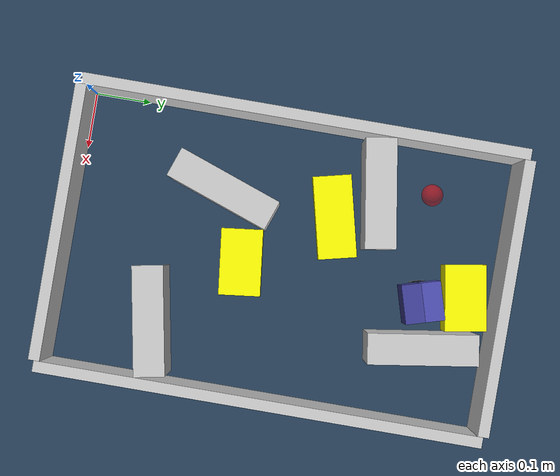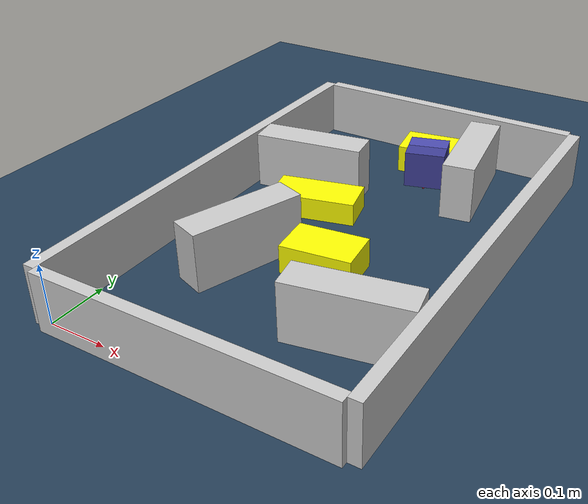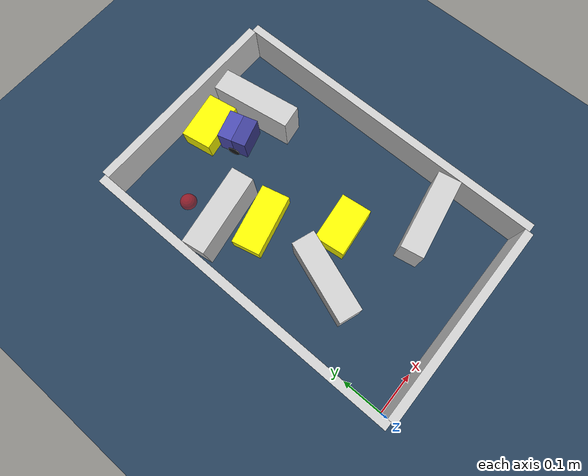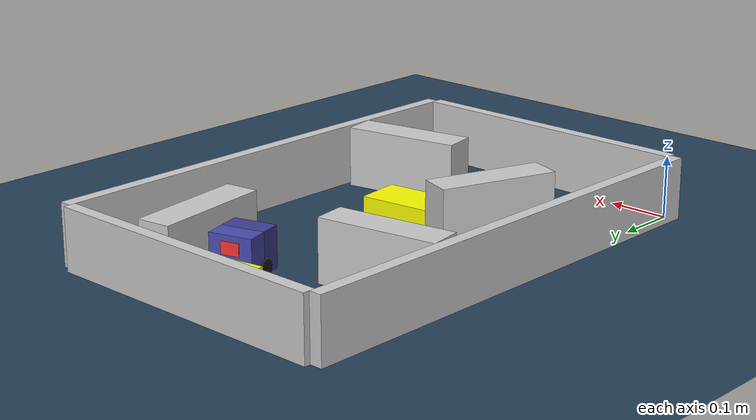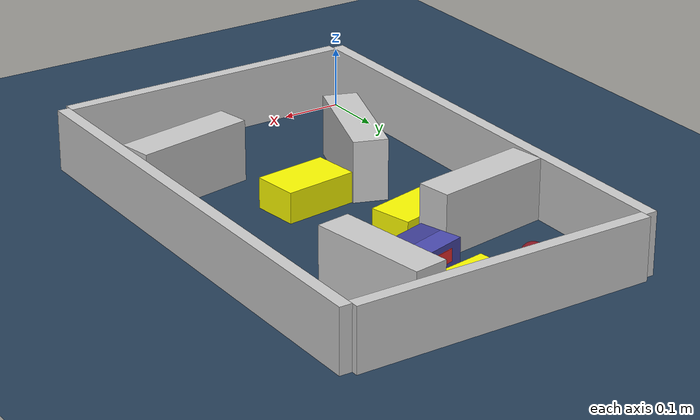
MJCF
<?xml version='1.0' encoding='utf-8'?>
<mujoco model="real_buildable">
  <compiler angle="degree" />
  <option timestep="0.002" integrator="implicitfast" iterations="100" cone="elliptic" />
  <default>
    <geom density="1" />
  </default>
  <asset>
    <texture builtin="gradient" height="3072" rgb1="0.3 0.5 0.7" rgb2="0 0 0" type="skybox" width="512" />
    <texture builtin="checker" height="300" mark="edge" markrgb="0.8 0.8 0.8" name="groundplane" rgb1="0.2 0.3 0.4" rgb2="0.1 0.2 0.3" type="2d" width="300" />
    <material name="groundplane" reflectance="0.2" texrepeat="5 5" texture="groundplane" texuniform="true" />
  </asset>
  <worldbody>
    <light dir="0 0 -1" directional="true" pos="0 0 1.5" />
    <geom name="floor" type="plane" condim="4" friction="0.5 0.005 0.001" material="groundplane" size="0 0 0.05" />
    <body name="walls">
      <geom name="wall_boundary_left" type="box" condim="4" friction="1.0 0.005 0.0001" rgba="0.8 0.8 0.8 1" pos="-0.010000 0.387500 0.050000" euler="0 0 0.000000" size="0.010000 0.397500 0.050000" />
      <geom name="wall_boundary_right" type="box" condim="4" friction="1.0 0.005 0.0001" rgba="0.8 0.8 0.8 1" pos="0.500000 0.387500 0.050000" euler="0 0 0.000000" size="0.010000 0.397500 0.050000" />
      <geom name="wall_boundary_bottom" type="box" condim="4" friction="1.0 0.005 0.0001" rgba="0.8 0.8 0.8 1" pos="0.245000 -0.010000 0.050000" euler="0 0 0.000000" size="0.245000 0.010000 0.050000" />
      <geom name="wall_boundary_top" type="box" condim="4" friction="1.0 0.005 0.0001" rgba="0.8 0.8 0.8 1" pos="0.245000 0.785000 0.050000" euler="0 0 0.000000" size="0.245000 0.010000 0.050000" />
      <geom name="wall_inner_1" type="box" condim="4" friction="1.0 0.005 0.0001" rgba="0.8 0.8 0.8 1" pos="0.389000 0.175000 0.050000" euler="0 0 10.600000" size="0.097500 0.027500 0.050000" />
      <geom name="wall_inner_2" type="box" condim="4" friction="1.0 0.005 0.0001" rgba="0.8 0.8 0.8 1" pos="0.139000 0.265000 0.050000" euler="0 0 70.500000" size="0.097500 0.027500 0.050000" />
      <geom name="wall_inner_3" type="box" condim="4" friction="1.0 0.005 0.0001" rgba="0.8 0.8 0.8 1" pos="0.100610 0.537798 0.050000" euler="0 0 189.038645" size="0.097500 0.027500 0.050000" />
      <geom name="wall_inner_4" type="box" condim="4" friction="1.0 0.005 0.0001" rgba="0.8 0.8 0.8 1" pos="0.357346 0.656147 0.050000" euler="0 0 98.621754" size="0.097500 0.027500 0.050000" />
    </body>
    <body name="car" pos="0.27673976425297159 0.64534155111346536 0.01" quat="0.59968130529645114 0 0 0.80023892187142753">
      <freejoint name="car_freejoint" />
      <inertial pos="0 0 0.0375" mass="0.35" diaginertia="0.000266 0.000266 0.000286" />
      <geom name="front_chassis_collision" type="box" pos="0.0175 0 0.0375" size="0.0175 0.035 0.0325" rgba="0.3 0.3 0.7 1" />
      <geom name="rear_chassis_collision" type="box" pos="-0.0175 0 0.0375" size="0.0175 0.035 0.0325" rgba="0.25 0.25 0.6 1" />
      <geom name="front_marker" type="box" pos="0.034 0 0.0505" size="0.002 0.015 0.01" rgba="1 0.2 0.2 1" contype="0" conaffinity="0" />
      <body name="rear_support_body" pos="-0.03 0 0.0025">
        <joint name="rear_caster_joint" type="ball" damping="0.0001" />
        <inertial pos="0 0 0" mass="0.025" diaginertia="0.000001 0.000001 0.000001" />
        <geom name="rear_support" type="sphere" pos="0 0 0" size="0.0025" friction="0 0 0" rgba="0.7 0.1 0.1 1" />
      </body>
      <body name="front_support_body" pos="0.03 0 0.0025">
        <joint name="front_caster_joint" type="ball" damping="0.0001" />
        <inertial pos="0 0 0" mass="0.025" diaginertia="0.000001 0.000001 0.000001" />
        <geom name="front_support" type="sphere" pos="0 0 0" size="0.0025" friction="0 0 0" rgba="0.1 0.7 0.1 1" />
      </body>
      <body name="left_wheel" pos="0 0.0375 0.015">
        <inertial pos="0 0 0" mass="0.05" diaginertia="0.000003 0.000006 0.000003" />
        <joint name="left_wheel_joint" type="hinge" axis="0 1 0" damping="0.01" armature="0.0001" />
        <geom name="left_wheel_collision" type="cylinder" size="0.015 0.0005" euler="90 0 0" rgba="0.1 0.1 0.1 1" />
      </body>
      <body name="right_wheel" pos="0 -0.0375 0.015">
        <inertial pos="0 0 0" mass="0.05" diaginertia="0.000003 0.000006 0.000003" />
        <joint name="right_wheel_joint" type="hinge" axis="0 1 0" damping="0.01" armature="0.0001" />
        <geom name="right_wheel_collision" type="cylinder" size="0.015 0.0005" euler="90 0 0" rgba="0.1 0.1 0.1 1" />
      </body>
    </body>
    <body name="obstacle_0_movable">
      <geom name="obstacle_0_movable" condim="4" pos="0.26076776885397729 0.31461449950324688 0.025000000000000001" friction="1 0.005 0.0001" rgba="1 1 0 1" size="0.037500 0.060000 0.025000" type="box" mass="0.1" quat="0.74795136969015574 0 0 -0.66375352999334025" />
      <joint type="free" />
    </body>
    <body name="obstacle_1_movable">
      <geom name="obstacle_1_movable" condim="4" pos="0.25628663603249346 0.72353696304388637 0.025000000000000001" friction="1 0.005 0.0001" rgba="1 1 0 1" size="0.037500 0.060000 0.025000" type="box" mass="0.1" quat="0.64606397016651795 0 0 0.76328326750471653" />
      <joint type="free" />
    </body>
    <body name="obstacle_2_movable">
      <geom name="obstacle_2_movable" condim="4" pos="0.15193899999999985 0.46790599999999966 0.02" friction="1 0.005 0.0001" rgba="1 1 0 1" size="0.035000 0.075000 0.020000" type="box" mass="0.1" quat="0.61907031925439748 0 0 0.78533555873795657" />
      <joint type="free" />
    </body>
    <site name="goal" type="sphere" pos="0.080000 0.640000 0.0" size="0.02" rgba="1 0 0 0.5" />
  </worldbody>
  <actuator>
    <velocity name="left_wheel_drive" joint="left_wheel_joint" ctrlrange="-25 25" kv="0.75" forcerange="-0.5 0.5" />
    <velocity name="right_wheel_drive" joint="right_wheel_joint" ctrlrange="-25 25" kv="0.75" forcerange="-0.5 0.5" />
  </actuator>
</mujoco>
